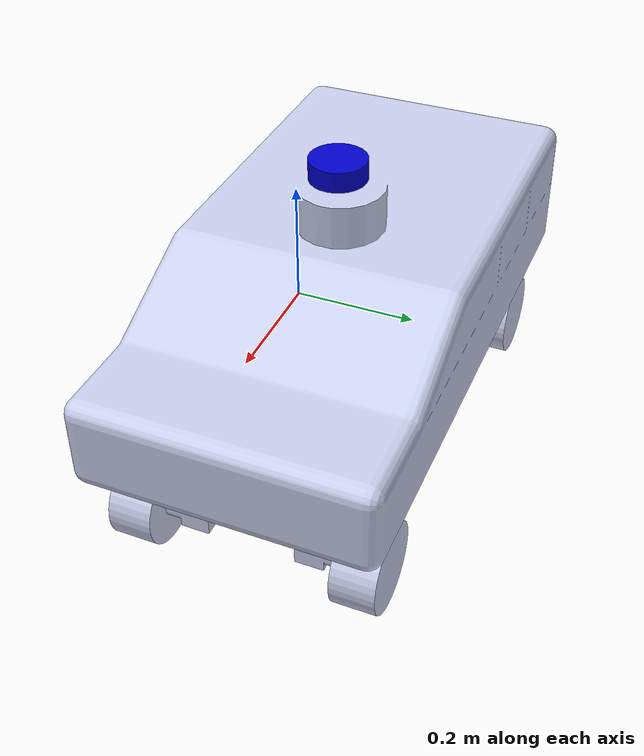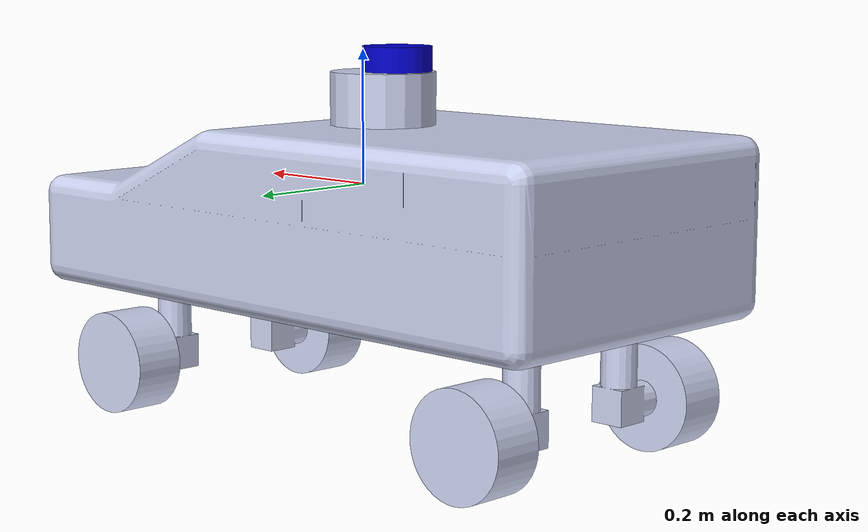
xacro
<?xml version="1.0" ?>

<robot
  name="robot_name" xmlns:xacro="http://ros.org/wiki/xacro">

  <xacro:macro name="body_color">
    <visual>
    <material>
        <ambient>0.15294 0.16078 0.96078 1</ambient>
        <diffuse>0.15294 0.16078 0.96078 1</diffuse>
        <specular>0.1 0.1 0.1 1</specular>
        <emissive>0 0 0 0</emissive>
    </material>
    </visual>
  </xacro:macro>

  <xacro:macro name="axle_color">
    <visual>
    <material>
        <ambient>0.79216 0.81961 0.93333 1</ambient>
        <diffuse>0.79216 0.81961 0.93333 1</diffuse>
        <specular>0.1 0.1 0.1 1</specular>
        <emissive>0 0 0 0</emissive>
    </material>
    </visual>
  </xacro:macro>

  <xacro:macro name="wheel_color">
    <visual>
    <material>
        <ambient>0.0 0.0 0.0 1</ambient>
        <diffuse>0.0 0.0 0.0 1</diffuse>
        <specular>0.1 0.1 0.1 1</specular>
        <emissive>0 0 0 0</emissive>
    </material>
    </visual>
  </xacro:macro>

  <link name="dummy_link"></link>
  <link
    name="base_link">
    <inertial>
      <origin
        xyz="-0.12098 -0.036587 -0.041693"
        rpy="0 0 0" />
      <mass
        value="3" />
      <inertia
        ixx="2.9365"
        ixy="0.38432"
        ixz="-0.00028685"
        iyy="10.018"
        iyz="0.00021954"
        izz="8.251" />
    </inertial>
    <visual>
      <origin
        xyz="0 0 0"
        rpy="0 0 0" />
      <geometry>
        <mesh
          filename="package://car/meshes/base_link.STL" />
      </geometry>
      <material
        name="">
        <color
          rgba="0.79216 0.81961 0.93333 1" />
      </material>
    </visual>
    <collision>
      <origin
        xyz="0 0 0"
        rpy="0 0 0" />
      <geometry>
        <mesh
          filename="package://car/meshes/base_link.STL" />
      </geometry>
    </collision>
  </link>
  <joint name="dummy_joint" type="fixed">
    <origin rpy="0 0 0" xyz="0 0 0" />
    <parent link="dummy_link"/>
    <child link="base_link"/>
  </joint>
  <link
    name="br_axle_link">
    <inertial>
      <origin
        xyz="0.01325 -4.996E-16 0.1753"
        rpy="0 0 0" />
      <mass
        value="0.77981" />
      <inertia
        ixx="0.0064774"
        ixy="2.2484E-17"
        ixz="-0.00095429"
        iyy="0.007066"
        iyz="3.7929E-17"
        izz="0.00085445" />
    </inertial>
    <visual>
      <origin
        xyz="0 0 0"
        rpy="0 0 0" />
      <geometry>
        <mesh
          filename="package://car/meshes/br_axle_link.STL" />
      </geometry>
      <material
        name="">
        <color
          rgba="0.79216 0.81961 0.93333 1" />
      </material>
    </visual>
    <collision>
      <origin
        xyz="0 0 0"
        rpy="0 0 0" />
      <geometry>
        <mesh
          filename="package://car/meshes/br_axle_link.STL" />
      </geometry>
    </collision>
  </link>
  <joint
    name="br_axle_joint"
    type="fixed">
    <origin
      xyz="-0.43846 -0.059938 -0.0042092"
      rpy="-3.1416 0 -1.5741" />
    <parent
      link="base_link" />
    <child
      link="br_axle_link" />
    <axis
      xyz="0 0 0" />
  </joint>
  <link
    name="br_wheel_link">
    <inertial>
      <origin
        xyz="0 -1.0408E-17 -0.039115"
        rpy="0 0 0" />
      <mass
        value="1.287" />
      <inertia
        ixx="0.0026336"
        ixy="3.8239E-19"
        ixz="1.9016E-19"
        iyy="0.0026336"
        iyz="1.0651E-18"
        izz="0.0040023" />
    </inertial>
    <visual>
      <origin
        xyz="0 0 0"
        rpy="0 0 0" />
      <geometry>
        <mesh
          filename="package://car/meshes/br_wheel_link.STL" />
      </geometry>
      <material
        name="">
        <color
          rgba="0.79608 0.82353 0.93725 1" />
      </material>
    </visual>
    <collision>
      <origin
        xyz="0 0 0"
        rpy="0 0 0" />
      <geometry>
        <mesh
          filename="package://car/meshes/br_wheel_link.STL" />
      </geometry>
    </collision>
  </link>
  <joint
    name="br_wheel_joint"
    type="continuous">
    <origin
      xyz="0.053315 0 0.26765"
      rpy="1.5708 0.61104 -1.5708" />
    <parent
      link="br_axle_link" />
    <child
      link="br_wheel_link" />
    <axis
      xyz="0 0 1" />
    <limit
      effort="100"
      velocity="1000" />
  </joint>
  <link
    name="bl_axle_link">
    <inertial>
      <origin
        xyz="0.01325 2.387E-15 0.1753"
        rpy="0 0 0" />
      <mass
        value="0.77981" />
      <inertia
        ixx="0.0064774"
        ixy="-1.0652E-16"
        ixz="-0.00095429"
        iyy="0.007066"
        iyz="-1.7503E-16"
        izz="0.00085445" />
    </inertial>
    <visual>
      <origin
        xyz="0 0 0"
        rpy="0 0 0" />
      <geometry>
        <mesh
          filename="package://car/meshes/bl_axle_link.STL" />
      </geometry>
      <material
        name="">
        <color
          rgba="0.79216 0.81961 0.93333 1" />
      </material>
    </visual>
    <collision>
      <origin
        xyz="0 0 0"
        rpy="0 0 0" />
      <geometry>
        <mesh
          filename="package://car/meshes/bl_axle_link.STL" />
      </geometry>
    </collision>
  </link>
  <joint
    name="bl_axle_joint"
    type="fixed">
    <origin
      xyz="-0.43846 0.14326 -0.0042092"
      rpy="3.1416 0 1.5702" />
    <parent
      link="base_link" />
    <child
      link="bl_axle_link" />
    <axis
      xyz="0 0 0" />
  </joint>
  <link
    name="bl_wheel_link">
    <inertial>
      <origin
        xyz="0 0 -0.039116"
        rpy="0 0 0" />
      <mass
        value="1.287" />
      <inertia
        ixx="0.0026336"
        ixy="-2.0149E-19"
        ixz="-3.5639E-19"
        iyy="0.0026336"
        iyz="1.1603E-18"
        izz="0.0040023" />
    </inertial>
    <visual>
      <origin
        xyz="0 0 0"
        rpy="0 0 0" />
      <geometry>
        <mesh
          filename="package://car/meshes/bl_wheel_link.STL" />
      </geometry>
      <material
        name="">
        <color
          rgba="0.79608 0.82353 0.93725 1" />
      </material>
    </visual>
    <collision>
      <origin
        xyz="0 0 0"
        rpy="0 0 0" />
      <geometry>
        <mesh
          filename="package://car/meshes/bl_wheel_link.STL" />
      </geometry>
    </collision>
  </link>
  <joint
    name="bl_wheel_joint"
    type="continuous">
    <origin
      xyz="0.053314 0 0.26765"
      rpy="-1.5708 -0.29845 1.5708" />
    <parent
      link="bl_axle_link" />
    <child
      link="bl_wheel_link" />
    <axis
      xyz="0 0 1" />
    <limit
      effort="100"
      velocity="1000" />
  </joint>
  <link
    name="fl_axle_link">
    <inertial>
      <origin
        xyz="0.01325 -7.7716E-16 0.1753"
        rpy="0 0 0" />
      <mass
        value="0.77981" />
      <inertia
        ixx="0.0064774"
        ixy="3.4515E-17"
        ixz="-0.00095429"
        iyy="0.007066"
        iyz="5.6776E-17"
        izz="0.00085445" />
    </inertial>
    <visual>
      <origin
        xyz="0 0 0"
        rpy="0 0 0" />
      <geometry>
        <mesh
          filename="package://car/meshes/fl_axle_link.STL" />
      </geometry>
      <material
        name="">
        <color
          rgba="0.79216 0.81961 0.93333 1" />
      </material>
    </visual>
    <collision>
      <origin
        xyz="0 0 0"
        rpy="0 0 0" />
      <geometry>
        <mesh
          filename="package://car/meshes/fl_axle_link.STL" />
      </geometry>
    </collision>
  </link>
  <joint
    name="fl_axle_joint"
    type="revolute">
    <origin
      xyz="0.27274 0.14326 -0.0042092"
      rpy="3.1416 0 1.5755" />
    <parent
      link="base_link" />
    <child
      link="fl_axle_link" />
    <axis
      xyz="0 0 1" />
    <limit
      lower="-3.14"
      upper="3.14"
      effort="100"
      velocity="1000" />
  </joint>
  <link
    name="fl_wheel_link">
    <inertial>
      <origin
        xyz="-3.8858E-16 0 -0.039855"
        rpy="0 0 0" />
      <mass
        value="1.287" />
      <inertia
        ixx="0.0026336"
        ixy="-1.6262E-20"
        ixz="-9.0802E-19"
        iyy="0.0026336"
        iyz="-1.9713E-18"
        izz="0.0040023" />
    </inertial>
    <visual>
      <origin
        xyz="0 0 0"
        rpy="0 0 0" />
      <geometry>
        <mesh
          filename="package://car/meshes/fl_wheel_link.STL" />
      </geometry>
      <material
        name="">
        <color
          rgba="0.79608 0.82353 0.93725 1" />
      </material>
    </visual>
    <collision>
      <origin
        xyz="0 0 0"
        rpy="0 0 0" />
      <geometry>
        <mesh
          filename="package://car/meshes/fl_wheel_link.STL" />
      </geometry>
    </collision>
  </link>
  <joint
    name="fl_wheel_joint"
    type="continuous">
    <origin
      xyz="0.052575 0 0.26765"
      rpy="-1.5708 0.038943 1.5708" />
    <parent
      link="fl_axle_link" />
    <child
      link="fl_wheel_link" />
    <axis
      xyz="0 0 1" />
    <limit
      effort="100"
      velocity="1000" />
  </joint>
  <link
    name="fr_axle_link">
    <inertial>
      <origin
        xyz="0.01325 2.2204E-16 0.1753"
        rpy="0 0 0" />
      <mass
        value="0.77981" />
      <inertia
        ixx="0.0064774"
        ixy="-6.8101E-18"
        ixz="-0.00095429"
        iyy="0.007066"
        iyz="-1.2415E-17"
        izz="0.00085445" />
    </inertial>
    <visual>
      <origin
        xyz="0 0 0"
        rpy="0 0 0" />
      <geometry>
        <mesh
          filename="package://car/meshes/fr_axle_link.STL" />
      </geometry>
      <material
        name="">
        <color
          rgba="0.79216 0.81961 0.93333 1" />
      </material>
    </visual>
    <collision>
      <origin
        xyz="0 0 0"
        rpy="0 0 0" />
      <geometry>
        <mesh
          filename="package://car/meshes/fr_axle_link.STL" />
      </geometry>
    </collision>
  </link>
  <joint
    name="fr_axle_joint"
    type="revolute">
    <origin
      xyz="0.27274 -0.059938 -0.0042092"
      rpy="-3.1416 0 -1.5733" />
    <parent
      link="base_link" />
    <child
      link="fr_axle_link" />
    <axis
      xyz="0 0 1" />
    <limit
      lower="-3.14"
      upper="3.14"
      effort="100"
      velocity="1000" />
  </joint>
  <link
    name="fr_wheel_link">
    <inertial>
      <origin
        xyz="7.7716E-16 2.2204E-16 -0.039116"
        rpy="0 0 0" />
      <mass
        value="1.287" />
      <inertia
        ixx="0.0026336"
        ixy="-2.7991E-19"
        ixz="2.6766E-19"
        iyy="0.0026336"
        iyz="-5.5798E-19"
        izz="0.0040023" />
    </inertial>
    <visual>
      <origin
        xyz="0 0 0"
        rpy="0 0 0" />
      <geometry>
        <mesh
          filename="package://car/meshes/fr_wheel_link.STL" />
      </geometry>
      <material
        name="">
        <color
          rgba="0.79608 0.82353 0.93725 1" />
      </material>
    </visual>
    <collision>
      <origin
        xyz="0 0 0"
        rpy="0 0 0" />
      <geometry>
        <mesh
          filename="package://car/meshes/fr_wheel_link.STL" />
      </geometry>
    </collision>
  </link>
  <joint
    name="fr_wheel_joint"
    type="continuous">
    <origin
      xyz="0.053314 0 0.26765"
      rpy="1.5708 -0.41357 -1.5708" />
    <parent
      link="fr_axle_link" />
    <child
      link="fr_wheel_link" />
    <axis
      xyz="0 0 1" />
    <limit
      effort="100"
      velocity="1000" />
  </joint>
  <link name = "laser_frame">
    <visual>
      <geometry>
        <cylinder radius="0.05" length="0.04"/>
      </geometry>
      <material name="red">
        <color rgba="0 0 0.8 1"/>
      </material>
    </visual>
    <collision>
      <geometry>
        <cylinder radius="0.05" length="0.04"/>
      </geometry>
    </collision>
  </link>
  <joint name="laser_joint" type="fixed">
    <parent link="base_link"/>
    <child link="laser_frame"/>
    <origin xyz="-0.1 0.03 0.19" rpy="0 0 0"/>
  </joint>

  <ros2_control name="GazeboSystem" type="system">
    <hardware>
        <plugin>gazebo_ros2_control/GazeboSystem</plugin>
    </hardware>
  # Velocity Controllers

  <joint name="br_wheel_joint">
      <command_interface name="velocity">
          <param name="min">-1000.0</param>
          <param name="max">1000.0</param>
      </command_interface>
      <state_interface name="position"/>
      <state_interface name="velocity"/>
  </joint>

  <joint name="bl_wheel_joint">
      <command_interface name="velocity">
          <param name="min">-1000.0</param>
          <param name="max">1000.0</param>
      </command_interface>
      <state_interface name="position"/>
      <state_interface name="velocity"/>
  </joint>

  <joint name="fl_wheel_joint">
      <command_interface name="velocity">
          <param name="min">-1000.0</param>
          <param name="max">1000.0</param>
      </command_interface>
      <state_interface name="position"/>
      <state_interface name="velocity"/>
  </joint>

  <joint name="fr_wheel_joint">
      <command_interface name="velocity">
          <param name="min">-1000.0</param>
          <param name="max">1000.0</param>
      </command_interface>
      <state_interface name="position"/>
      <state_interface name="velocity"/>
  </joint>

  # Position Controller
  <joint name="fl_axle_joint">
      <command_interface name="position">
          <param name="min">-3.14</param>
          <param name="max">3.14</param>
      </command_interface>
      <state_interface name="position"/>
      <state_interface name="velocity"/>
  </joint>

  <joint name="fr_axle_joint">
      <command_interface name="position">
          <param name="min">-3.14</param>
          <param name="max">3.14</param>
      </command_interface>
      <state_interface name="position"/>
      <state_interface name="velocity"/>
  </joint>

  </ros2_control>

  <gazebo>
    <plugin filename="libgazebo_ros2_control.so" name="gazebo_ros2_control">
        <parameters>$(find car)/config/control.yaml</parameters>
    </plugin>
  </gazebo>

  <gazebo reference="base_link">
    <xacro:body_color />
  </gazebo>

  <gazebo reference="fr_axle_link">
      <xacro:axle_color />
  </gazebo>

  <gazebo reference="br_axle_link">
      <xacro:axle_color />
  </gazebo>

  <gazebo reference="fl_axle_link">
      <xacro:axle_color />
  </gazebo>

  <gazebo reference="bl_axle_link">
      <xacro:axle_color />
  </gazebo>

  <gazebo reference="fr_wheel_link">
      <xacro:wheel_color />
  </gazebo>

  <gazebo reference="br_wheel_link">
      <xacro:wheel_color />
  </gazebo>

  <gazebo reference="fl_wheel_link">
      <xacro:wheel_color />
  </gazebo>

  <gazebo reference="bl_wheel_link">
      <xacro:wheel_color />
  </gazebo>

  <gazebo reference="laser_frame">
    <material>Gazebo/Red</material>

    <sensor name="laser" type="ray">
      <pose> 0 0 0 0 0 0 </pose>
      <visualize>true</visualize>
      <update_rate>10</update_rate>
      <ray>
        <scan>
          <horizontal>
            <samples>360</samples>
            <min_angle>-3.14</min_angle>
            <max_angle>3.14</max_angle>
          </horizontal>
        </scan>
        <range>
          <min>0.3</min>
          <max>12</max>
        </range>
      </ray>
      <plugin name="laser_controller" filename="libgazebo_ros_ray_sensor.so">
        <ros>
          <argument>~/out:=scan</argument>
        </ros>
        <output_type>sensor_msgs/LaserScan</output_type>
        <frame_name>laser_frame</frame_name>
      </plugin>
    </sensor>
  </gazebo>

  <gazebo reference="base_link">
    <gravity>true</gravity>
    <sensor name="imu_sensor" type="imu">
      <always_on>true</always_on>
      <update_rate>100</update_rate>
      <visualize>true</visualize>
      <topic>__default_topic__</topic>
      <plugin filename="libgazebo_ros_imu_sensor.so" name="imu_plugin">
        <topicName>imu</topicName>
        <bodyName>base_link</bodyName>
        <updateRateHZ>10.0</updateRateHZ>
        <gaussianNoise>0.0</gaussianNoise>
        <xyzOffset>0 0 0</xyzOffset>
        <rpyOffset>0 0 0</rpyOffset>
        <frameName>base_link</frameName>
        <initialOrientationAsReference>false</initialOrientationAsReference>
      </plugin>
      <pose>0 0 0 0 0 0</pose>
    </sensor>
  </gazebo>
</robot>
